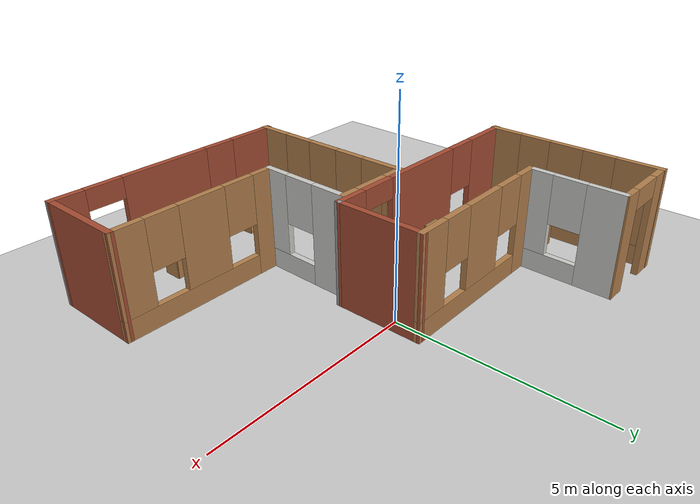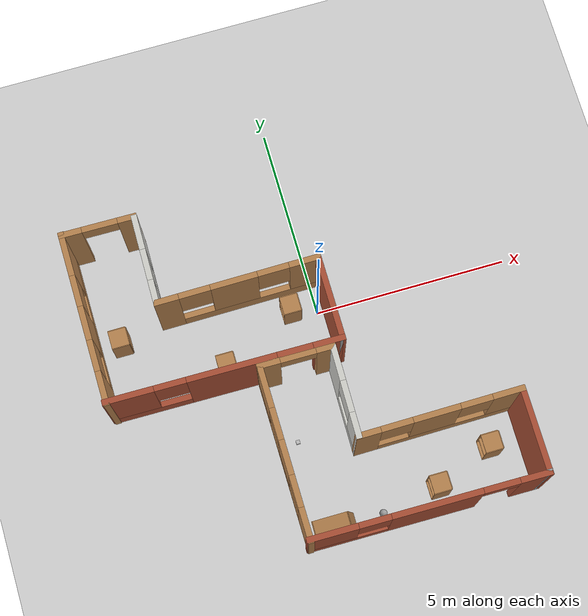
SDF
<sdf version="1.6">
 <world name="default">
  <plugin name="hello" filename="build/libhello.so"/>
  <plugin name="collision_map_creator" filename="libcollision_map_creator.so"/>
  <light name="sun" type="directional">
   <pose>0 0 10 0 -0 0</pose>
   <diffuse>0.8 0.8 0.8 1</diffuse>
   <specular>0.2 0.2 0.2 1</specular>
   <attenuation>
    <range>1000</range>
    <constant>0.9</constant>
    <linear>0.01</linear>
    <quadratic>0.001</quadratic>
   </attenuation>
   <direction>-0.5 0.1 -0.9</direction>
  </light>
  <model name="ground_plane">
   <static>1</static>
   <link name="link">
    <collision name="collision">
     <geometry><plane><normal>0 0 1</normal><size>100 100</size></plane></geometry>
     <surface>
      <contact><collide_bitmask>65535</collide_bitmask></contact>
      <friction><ode><mu>100</mu><mu2>50</mu2></ode></friction>
     </surface>
    </collision>
    <visual name="visual">
     <cast_shadows>0</cast_shadows>
     <geometry><plane><normal>0 0 1</normal><size>100 100</size></plane></geometry>
     <material>
      <script><uri>file://media/materials/scripts/gazebo.material</uri><name>Gazebo/Grey</name></script>
     </material>
    </visual>
   </link>
  </model>
  <gravity>0 0 -9.8</gravity>
  <magnetic_field>6e-06 2.3e-05 -4.2e-05</magnetic_field>
  <atmosphere type="adiabatic"/>
  <physics name="default_physics" default="0" type="ode">
   <max_step_size>0.001</max_step_size>
   <real_time_factor>1</real_time_factor>
   <real_time_update_rate>1000</real_time_update_rate>
  </physics>
  <scene><ambient>0.4 0.4 0.4 1</ambient><background>0.7 0.7 0.7 1</background><shadows>1</shadows></scene>
  <spherical_coordinates>
   <surface_model>EARTH_WGS84</surface_model>
   <latitude_deg>0</latitude_deg>
   <longitude_deg>0</longitude_deg>
   <elevation>0</elevation>
   <heading_deg>0</heading_deg>
  </spherical_coordinates>
  <model name="cabinet">
   <static>1</static>
   <link name="cabinet_bottom_plate">
    <inertial>
     <pose>0 0 -1 0 -0 0</pose>
     <inertia><ixx>2.05</ixx><ixy>0</ixy><ixz>0</ixz><iyy>2.05</iyy><iyz>0</iyz><izz>2.05</izz></inertia>
     <mass>25</mass>
    </inertial>
    <collision name="cabinet_bottom_plate_geom">
     <pose>0 0 0.01 0 -0 0</pose>
     <geometry><box><size>0.45 0.45 0.02</size></box></geometry>
    </collision>
    <visual name="cabinet_bottom_plate_geom_visual">
     <pose>0 0 0.01 0 -0 0</pose>
     <geometry><box><size>0.45 0.45 0.02</size></box></geometry>
     <material>
      <script><uri>file://media/materials/scripts/gazebo.material</uri><name>Gazebo/Wood</name></script>
     </material>
    </visual>
    <collision name="cabinet_bottom_plate_geom_cabinet_back_plate">
     <pose>0.235 0 0.51 0 -0 0</pose>
     <geometry><box><size>0.02 0.45 1.02</size></box></geometry>
    </collision>
    <visual name="cabinet_bottom_plate_geom_cabinet_back_plate_visual">
     <pose>0.235 0 0.51 0 -0 0</pose>
     <geometry><box><size>0.02 0.45 1.02</size></box></geometry>
     <material>
      <script><uri>file://media/materials/scripts/gazebo.material</uri><name>Gazebo/Wood</name></script>
     </material>
    </visual>
    <collision name="cabinet_bottom_plate_geom_cabinet_left_plate">
     <pose>0 0.235 0.51 0 -0 0</pose>
     <geometry><box><size>0.45 0.02 1.02</size></box></geometry>
    </collision>
    <visual name="cabinet_bottom_plate_geom_cabinet_left_plate_visual">
     <pose>0 0.235 0.51 0 -0 0</pose>
     <geometry><box><size>0.45 0.02 1.02</size></box></geometry>
     <material>
      <script><uri>file://media/materials/scripts/gazebo.material</uri><name>Gazebo/Wood</name></script>
     </material>
    </visual>
    <collision name="cabinet_bottom_plate_geom_cabinet_middle_plate">
     <pose>0 0 0.51 0 -0 0</pose>
     <geometry><box><size>0.45 0.45 0.02</size></box></geometry>
    </collision>
    <visual name="cabinet_bottom_plate_geom_cabinet_middle_plate_visual">
     <pose>0 0 0.51 0 -0 0</pose>
     <geometry><box><size>0.45 0.45 0.02</size></box></geometry>
     <material>
      <script><uri>file://media/materials/scripts/gazebo.material</uri><name>Gazebo/Wood</name></script>
     </material>
    </visual>
    <collision name="cabinet_bottom_plate_geom_cabinet_right_plate">
     <pose>0 -0.235 0.51 0 -0 0</pose>
     <geometry><box><size>0.45 0.02 1.02</size></box></geometry>
    </collision>
    <visual name="cabinet_bottom_plate_geom_cabinet_right_plate_visual">
     <pose>0 -0.235 0.51 0 -0 0</pose>
     <geometry><box><size>0.45 0.02 1.02</size></box></geometry>
     <material>
      <script><uri>file://media/materials/scripts/gazebo.material</uri><name>Gazebo/Wood</name></script>
     </material>
    </visual>
    <collision name="cabinet_bottom_plate_geom_cabinet_top_plate">
     <pose>0 0 1.01 0 -0 0</pose>
     <geometry><box><size>0.45 0.45 0.02</size></box></geometry>
    </collision>
    <visual name="cabinet_bottom_plate_geom_cabinet_top_plate_visual">
     <pose>0 0 1.01 0 -0 0</pose>
     <geometry><box><size>0.45 0.45 0.02</size></box></geometry>
     <material>
      <script><uri>file://media/materials/scripts/gazebo.material</uri><name>Gazebo/Wood</name></script>
     </material>
    </visual>
   </link>
   <pose>3.13613 -4.56747 0 0 -0 0</pose>
  </model>
  <model name="bookshelf">
   <static>1</static>
   <link name="link">
    <inertial><mass>1</mass></inertial>
    <collision name="back">
     <pose>0 0.005 0.6 0 -0 0</pose>
     <geometry><box><size>0.9 0.01 1.2</size></box></geometry>
    </collision>
    <visual name="visual1">
     <pose>0 0.005 0.6 0 -0 0</pose>
     <geometry><box><size>0.9 0.01 1.2</size></box></geometry>
     <material>
      <script><uri>file://media/materials/scripts/gazebo.material</uri><name>Gazebo/Wood</name></script>
     </material>
    </visual>
    <collision name="left_side">
     <pose>0.45 -0.195 0.6 0 -0 0</pose>
     <geometry><box><size>0.02 0.4 1.2</size></box></geometry>
    </collision>
    <visual name="visual2">
     <pose>0.45 -0.195 0.6 0 -0 0</pose>
     <geometry><box><size>0.02 0.4 1.2</size></box></geometry>
     <material>
      <script><uri>file://media/materials/scripts/gazebo.material</uri><name>Gazebo/Wood</name></script>
     </material>
    </visual>
    <collision name="right_side">
     <pose>-0.45 -0.195 0.6 0 -0 0</pose>
     <geometry><box><size>0.02 0.4 1.2</size></box></geometry>
    </collision>
    <visual name="visual3">
     <pose>-0.45 -0.195 0.6 0 -0 0</pose>
     <geometry><box><size>0.02 0.4 1.2</size></box></geometry>
     <material>
      <script><uri>file://media/materials/scripts/gazebo.material</uri><name>Gazebo/Wood</name></script>
     </material>
    </visual>
    <collision name="bottom">
     <pose>0 -0.195 0.03 0 -0 0</pose>
     <geometry><box><size>0.88 0.4 0.06</size></box></geometry>
    </collision>
    <visual name="visual4">
     <pose>0 -0.195 0.03 0 -0 0</pose>
     <geometry><box><size>0.88 0.4 0.06</size></box></geometry>
     <material>
      <script><uri>file://media/materials/scripts/gazebo.material</uri><name>Gazebo/Wood</name></script>
     </material>
    </visual>
    <collision name="top">
     <pose>0 -0.195 1.19 0 -0 0</pose>
     <geometry><box><size>0.88 0.4 0.02</size></box></geometry>
    </collision>
    <visual name="visual5">
     <pose>0 -0.195 1.19 0 -0 0</pose>
     <geometry><box><size>0.88 0.4 0.02</size></box></geometry>
     <material>
      <script><uri>file://media/materials/scripts/gazebo.material</uri><name>Gazebo/Wood</name></script>
     </material>
    </visual>
    <collision name="low_shelf">
     <pose>0 -0.195 0.43 0 -0 0</pose>
     <geometry><box><size>0.88 0.4 0.02</size></box></geometry>
    </collision>
    <visual name="visual6">
     <pose>0 -0.195 0.43 0 -0 0</pose>
     <geometry><box><size>0.88 0.4 0.02</size></box></geometry>
     <material>
      <script><uri>file://media/materials/scripts/gazebo.material</uri><name>Gazebo/Wood</name></script>
     </material>
    </visual>
    <collision name="high_shelf">
     <pose>0 -0.195 0.8 0 -0 0</pose>
     <geometry><box><size>0.88 0.4 0.02</size></box></geometry>
    </collision>
    <visual name="visual7">
     <pose>0 -0.195 0.8 0 -0 0</pose>
     <geometry><box><size>0.88 0.4 0.02</size></box></geometry>
     <material>
      <script><uri>file://media/materials/scripts/gazebo.material</uri><name>Gazebo/Wood</name></script>
     </material>
    </visual>
   </link>
   <pose>-1.04959 -5.57878 0.024897 -0.045384 0.163876 3.1208</pose>
  </model>
  <model name="camera">
   <pose>-1.41813 -3.09362 0.05 0 0 -0.001713</pose>
   <link name="link">
    <inertial>
     <mass>0.1</mass>
     <inertia>
      <ixx>0.000166667</ixx>
      <iyy>0.000166667</iyy>
      <izz>0.000166667</izz>
      <ixy>0</ixy>
      <ixz>0</ixz>
      <iyz>0</iyz>
     </inertia>
    </inertial>
    <collision name="collision"><geometry><box><size>0.1 0.1 0.1</size></box></geometry></collision>
    <visual name="visual"><geometry><box><size>0.1 0.1 0.1</size></box></geometry></visual>
    <sensor name="camera" type="camera">
     <camera name="__default__">
      <horizontal_fov>1.047</horizontal_fov>
      <image><width>320</width><height>240</height></image>
      <clip><near>0.1</near><far>100</far></clip>
     </camera>
     <always_on>1</always_on>
     <update_rate>30</update_rate>
     <visualize>1</visualize>
    </sensor>
   </link>
  </model>
  <model name="my_ball">
   <link name="link_0">
    <inertial>
     <mass>1</mass>
     <inertia><ixx>0.1</ixx><ixy>0</ixy><ixz>0</ixz><iyy>0.1</iyy><iyz>0</iyz><izz>0.1</izz></inertia>
    </inertial>
    <visual name="visual">
     <geometry><sphere><radius>0.1</radius></sphere></geometry>
     <material>
      <lighting>1</lighting>
      <script><uri>file://media/materials/scripts/gazebo.material</uri><name>Gazebo/Grey</name></script>
      <shader type="pixel"><normal_map>__default__</normal_map></shader>
      <ambient>1 1 1 1</ambient>
      <diffuse>1 1 1 1</diffuse>
      <specular>1 1 1 1</specular>
      <emissive>1 1 1 1</emissive>
     </material>
    </visual>
    <collision name="collision">
     <geometry><sphere><radius>0.1</radius></sphere></geometry>
     <surface>
      <friction>
       <ode><mu>1</mu><mu2>1</mu2><fdir1>0 0 0</fdir1><slip1>0</slip1><slip2>0</slip2></ode>
       <torsional>
        <coefficient>1</coefficient>
        <patch_radius>0</patch_radius>
        <surface_radius>0</surface_radius>
        <use_patch_radius>1</use_patch_radius>
        <ode><slip>0</slip></ode>
       </torsional>
      </friction>
      <bounce><restitution_coefficient>0</restitution_coefficient><threshold>1e+06</threshold></bounce>
      <contact>
       <collide_without_contact>0</collide_without_contact>
       <collide_without_contact_bitmask>1</collide_without_contact_bitmask>
       <collide_bitmask>1</collide_bitmask>
       <ode>
        <soft_cfm>0</soft_cfm>
        <soft_erp>0.2</soft_erp>
        <kp>1e+13</kp>
        <kd>1</kd>
        <max_vel>0.01</max_vel>
        <min_depth>0</min_depth>
       </ode>
       <bullet>
        <split_impulse>1</split_impulse>
        <split_impulse_penetration_threshold>-0.01</split_impulse_penetration_threshold>
        <soft_cfm>0</soft_cfm>
        <soft_erp>0.2</soft_erp>
        <kp>1e+13</kp>
        <kd>1</kd>
       </bullet>
      </contact>
     </surface>
    </collision>
   </link>
   <static>0</static>
   <pose>0.133025 -5.41319 0.1 0.012904 0.027519 0.009382</pose>
  </model>
  <model name="new_apartment">
   <pose>1.04651 -3.63154 0 0 -0 0</pose>
   <link name="Wall_0">
    <pose>-2.92676 0.020995 0 0 -0 1.5754</pose>
    <visual name="Wall_0_Visual_0">
     <pose>-1.80744 0 1.25 0 -0 0</pose>
     <geometry><box><size>0.875172 0.15 2.5</size></box></geometry>
     <material>
      <script><uri>file://media/materials/scripts/gazebo.material</uri><name>Gazebo/Wood</name></script>
      <ambient>1 1 1 1</ambient>
     </material>
     <meta><layer>0</layer></meta>
    </visual>
    <collision name="Wall_0_Collision_0">
     <geometry><box><size>0.875172 0.15 2.5</size></box></geometry>
     <pose>-1.80744 0 1.25 0 -0 0</pose>
    </collision>
    <visual name="Wall_0_Visual_1">
     <pose>0.437586 0 0.25 0 -0 0</pose>
     <geometry><box><size>3.61488 0.15 0.5</size></box></geometry>
     <material>
      <script><uri>file://media/materials/scripts/gazebo.material</uri><name>Gazebo/Wood</name></script>
      <ambient>1 1 1 1</ambient>
     </material>
     <meta><layer>0</layer></meta>
    </visual>
    <collision name="Wall_0_Collision_1">
     <geometry><box><size>3.61488 0.15 0.5</size></box></geometry>
     <pose>0.437586 0 0.25 0 -0 0</pose>
    </collision>
    <visual name="Wall_0_Visual_2">
     <pose>-0.134999 0 1.5 0 -0 0</pose>
     <geometry><box><size>0.869706 0.15 2</size></box></geometry>
     <material>
      <script><uri>file://media/materials/scripts/gazebo.material</uri><name>Gazebo/Wood</name></script>
      <ambient>1 1 1 1</ambient>
     </material>
     <meta><layer>0</layer></meta>
    </visual>
    <collision name="Wall_0_Collision_2">
     <geometry><box><size>0.869706 0.15 2</size></box></geometry>
     <pose>-0.134999 0 1.5 0 -0 0</pose>
    </collision>
    <visual name="Wall_0_Visual_3">
     <pose>1.67244 0 1.5 0 -0 0</pose>
     <geometry><box><size>1.14517 0.15 2</size></box></geometry>
     <material>
      <script><uri>file://media/materials/scripts/gazebo.material</uri><name>Gazebo/Wood</name></script>
      <ambient>1 1 1 1</ambient>
     </material>
     <meta><layer>0</layer></meta>
    </visual>
    <collision name="Wall_0_Collision_3">
     <geometry><box><size>1.14517 0.15 2</size></box></geometry>
     <pose>1.67244 0 1.5 0 -0 0</pose>
    </collision>
    <visual name="Wall_0_Visual_4">
     <pose>-0.969852 0 1.9 0 -0 0</pose>
     <geometry><box><size>0.8 0.15 1.2</size></box></geometry>
     <material>
      <script><uri>file://media/materials/scripts/gazebo.material</uri><name>Gazebo/Wood</name></script>
      <ambient>1 1 1 1</ambient>
     </material>
     <meta><layer>0</layer></meta>
    </visual>
    <collision name="Wall_0_Collision_4">
     <geometry><box><size>0.8 0.15 1.2</size></box></geometry>
     <pose>-0.969852 0 1.9 0 -0 0</pose>
    </collision>
    <visual name="Wall_0_Visual_5">
     <pose>0.699854 0 1.9 0 -0 0</pose>
     <geometry><box><size>0.8 0.15 1.2</size></box></geometry>
     <material>
      <script><uri>file://media/materials/scripts/gazebo.material</uri><name>Gazebo/Wood</name></script>
      <ambient>1 1 1 1</ambient>
     </material>
     <meta><layer>0</layer></meta>
    </visual>
    <collision name="Wall_0_Collision_5">
     <geometry><box><size>0.8 0.15 1.2</size></box></geometry>
     <pose>0.699854 0 1.9 0 -0 0</pose>
    </collision>
   </link>
   <link name="Wall_1">
    <pose>-2.02176 2.171 0 0 0 -0.010929</pose>
    <visual name="Wall_1_Visual_0">
     <pose>-0.697365 0 1.25 0 -0 0</pose>
     <geometry><box><size>0.58538 0.15 2.5</size></box></geometry>
     <material>
      <script><uri>file://media/materials/scripts/gazebo.material</uri><name>Gazebo/Wood</name></script>
      <ambient>1 1 1 1</ambient>
     </material>
     <meta><layer>0</layer></meta>
    </visual>
    <collision name="Wall_1_Collision_0">
     <geometry><box><size>0.58538 0.15 2.5</size></box></geometry>
     <pose>-0.697365 0 1.25 0 -0 0</pose>
    </collision>
    <visual name="Wall_1_Visual_1">
     <pose>0.74269 0 1.25 0 -0 0</pose>
     <geometry><box><size>0.49473 0.15 2.5</size></box></geometry>
     <material>
      <script><uri>file://media/materials/scripts/gazebo.material</uri><name>Gazebo/Wood</name></script>
      <ambient>1 1 1 1</ambient>
     </material>
     <meta><layer>0</layer></meta>
    </visual>
    <collision name="Wall_1_Collision_1">
     <geometry><box><size>0.49473 0.15 2.5</size></box></geometry>
     <pose>0.74269 0 1.25 0 -0 0</pose>
    </collision>
    <visual name="Wall_1_Visual_2">
     <pose>0.045325 0 2.25 0 -0 0</pose>
     <geometry><box><size>0.9 0.15 0.5</size></box></geometry>
     <material>
      <script><uri>file://media/materials/scripts/gazebo.material</uri><name>Gazebo/Wood</name></script>
      <ambient>1 1 1 1</ambient>
     </material>
     <meta><layer>0</layer></meta>
    </visual>
    <collision name="Wall_1_Collision_2">
     <geometry><box><size>0.9 0.15 0.5</size></box></geometry>
     <pose>0.045325 0 2.25 0 -0 0</pose>
    </collision>
   </link>
   <link name="Wall_2">
    <pose>-1.12176 1.011 0 0 0 -1.58431</pose>
    <visual name="Wall_2_Visual_0">
     <pose>-0.732185 0 1.25 0 -0 0</pose>
     <geometry><box><size>0.905834 0.15 2.5</size></box></geometry>
     <material>
      <script><uri>file://media/materials/scripts/gazebo.material</uri><name>Gazebo/CeilingTiled</name></script>
      <ambient>0.435294 0.796078 0.67451 1</ambient>
     </material>
     <meta><layer>0</layer></meta>
    </visual>
    <collision name="Wall_2_Collision_0">
     <geometry><box><size>0.905834 0.15 2.5</size></box></geometry>
     <pose>-0.732185 0 1.25 0 -0 0</pose>
    </collision>
    <visual name="Wall_2_Visual_1">
     <pose>0.452917 0 0.25 0 -0 0</pose>
     <geometry><box><size>1.46437 0.15 0.5</size></box></geometry>
     <material>
      <script><uri>file://media/materials/scripts/gazebo.material</uri><name>Gazebo/CeilingTiled</name></script>
      <ambient>0.435294 0.796078 0.67451 1</ambient>
     </material>
     <meta><layer>0</layer></meta>
    </visual>
    <collision name="Wall_2_Collision_1">
     <geometry><box><size>1.46437 0.15 0.5</size></box></geometry>
     <pose>0.452917 0 0.25 0 -0 0</pose>
    </collision>
    <visual name="Wall_2_Visual_2">
     <pose>0.852917 0 1.5 0 -0 0</pose>
     <geometry><box><size>0.664369 0.15 2</size></box></geometry>
     <material>
      <script><uri>file://media/materials/scripts/gazebo.material</uri><name>Gazebo/CeilingTiled</name></script>
      <ambient>0.435294 0.796078 0.67451 1</ambient>
     </material>
     <meta><layer>0</layer></meta>
    </visual>
    <collision name="Wall_2_Collision_2">
     <geometry><box><size>0.664369 0.15 2</size></box></geometry>
     <pose>0.852917 0 1.5 0 -0 0</pose>
    </collision>
    <visual name="Wall_2_Visual_3">
     <pose>0.120732 0 1.9 0 -0 0</pose>
     <geometry><box><size>0.8 0.15 1.2</size></box></geometry>
     <material>
      <script><uri>file://media/materials/scripts/gazebo.material</uri><name>Gazebo/CeilingTiled</name></script>
      <ambient>0.435294 0.796078 0.67451 1</ambient>
     </material>
     <meta><layer>0</layer></meta>
    </visual>
    <collision name="Wall_2_Collision_3">
     <geometry><box><size>0.8 0.15 1.2</size></box></geometry>
     <pose>0.120732 0 1.9 0 -0 0</pose>
    </collision>
   </link>
   <link name="Wall_3">
    <pose>0.905 -0.099783 0 0 -0 0.004517</pose>
    <visual name="Wall_3_Visual_0">
     <pose>-1.80429 0 1.25 0 -0 0</pose>
     <geometry><box><size>0.62499 0.15 2.5</size></box></geometry>
     <material>
      <script><uri>file://media/materials/scripts/gazebo.material</uri><name>Gazebo/Wood</name></script>
      <ambient>1 1 1 1</ambient>
     </material>
     <meta><layer>0</layer></meta>
    </visual>
    <collision name="Wall_3_Collision_0">
     <geometry><box><size>0.62499 0.15 2.5</size></box></geometry>
     <pose>-1.80429 0 1.25 0 -0 0</pose>
    </collision>
    <visual name="Wall_3_Visual_1">
     <pose>0.312495 0 0.25 0 -0 0</pose>
     <geometry><box><size>3.60857 0.15 0.5</size></box></geometry>
     <material>
      <script><uri>file://media/materials/scripts/gazebo.material</uri><name>Gazebo/Wood</name></script>
      <ambient>1 1 1 1</ambient>
     </material>
     <meta><layer>0</layer></meta>
    </visual>
    <collision name="Wall_3_Collision_1">
     <geometry><box><size>3.60857 0.15 0.5</size></box></geometry>
     <pose>0.312495 0 0.25 0 -0 0</pose>
    </collision>
    <visual name="Wall_3_Visual_2">
     <pose>-0.096552 0 1.5 0 -0 0</pose>
     <geometry><box><size>1.19048 0.15 2</size></box></geometry>
     <material>
      <script><uri>file://media/materials/scripts/gazebo.material</uri><name>Gazebo/Wood</name></script>
      <ambient>1 1 1 1</ambient>
     </material>
     <meta><layer>0</layer></meta>
    </visual>
    <collision name="Wall_3_Collision_2">
     <geometry><box><size>1.19048 0.15 2</size></box></geometry>
     <pose>-0.096552 0 1.5 0 -0 0</pose>
    </collision>
    <visual name="Wall_3_Visual_3">
     <pose>1.70773 0 1.5 0 -0 0</pose>
     <geometry><box><size>0.818095 0.15 2</size></box></geometry>
     <material>
      <script><uri>file://media/materials/scripts/gazebo.material</uri><name>Gazebo/Wood</name></script>
      <ambient>1 1 1 1</ambient>
     </material>
     <meta><layer>0</layer></meta>
    </visual>
    <collision name="Wall_3_Collision_3">
     <geometry><box><size>0.818095 0.15 2</size></box></geometry>
     <pose>1.70773 0 1.5 0 -0 0</pose>
    </collision>
    <visual name="Wall_3_Visual_4">
     <pose>-1.09179 0 1.9 0 -0 0</pose>
     <geometry><box><size>0.8 0.15 1.2</size></box></geometry>
     <material>
      <script><uri>file://media/materials/scripts/gazebo.material</uri><name>Gazebo/Wood</name></script>
      <ambient>1 1 1 1</ambient>
     </material>
     <meta><layer>0</layer></meta>
    </visual>
    <collision name="Wall_3_Collision_4">
     <geometry><box><size>0.8 0.15 1.2</size></box></geometry>
     <pose>-1.09179 0 1.9 0 -0 0</pose>
    </collision>
    <visual name="Wall_3_Visual_5">
     <pose>0.898686 0 1.9 0 -0 0</pose>
     <geometry><box><size>0.8 0.15 1.2</size></box></geometry>
     <material>
      <script><uri>file://media/materials/scripts/gazebo.material</uri><name>Gazebo/Wood</name></script>
      <ambient>1 1 1 1</ambient>
     </material>
     <meta><layer>0</layer></meta>
    </visual>
    <collision name="Wall_3_Collision_5">
     <geometry><box><size>0.8 0.15 1.2</size></box></geometry>
     <pose>0.898686 0 1.9 0 -0 0</pose>
    </collision>
   </link>
   <link name="Wall_4">
    <collision name="Wall_4_Collision">
     <geometry><box><size>2.25 0.15 2.5</size></box></geometry>
     <pose>0 0 1.25 0 -0 0</pose>
    </collision>
    <visual name="Wall_4_Visual">
     <pose>0 0 1.25 0 -0 0</pose>
     <geometry><box><size>2.25 0.15 2.5</size></box></geometry>
     <material>
      <script><uri>file://media/materials/scripts/gazebo.material</uri><name>Gazebo/Bricks</name></script>
      <ambient>1 1 1 1</ambient>
     </material>
     <meta><layer>0</layer></meta>
    </visual>
    <pose>2.94676 -1.14056 0 0 0 -1.5708</pose>
   </link>
   <link name="Wall_5">
    <collision name="Wall_5_Collision">
     <geometry><box><size>0.15 0.15 2.5</size></box></geometry>
     <pose>0 0 1.25 0 -0 0</pose>
    </collision>
    <visual name="Wall_5_Visual">
     <pose>0 0 1.25 0 -0 0</pose>
     <geometry><box><size>0.15 0.15 2.5</size></box></geometry>
     <material>
      <script><uri>file://media/materials/scripts/gazebo.material</uri><name>Gazebo/Grey</name></script>
      <ambient>1 1 1 1</ambient>
     </material>
     <meta><layer>0</layer></meta>
    </visual>
    <pose>2.94676 -2.19056 0 0 -0 0</pose>
   </link>
   <link name="Wall_6">
    <collision name="Wall_6_Collision">
     <geometry><box><size>0.15 0.15 2.5</size></box></geometry>
     <pose>0 0 1.25 0 -0 0</pose>
    </collision>
    <visual name="Wall_6_Visual">
     <pose>0 0 1.25 0 -0 0</pose>
     <geometry><box><size>0.15 0.15 2.5</size></box></geometry>
     <material>
      <script><uri>file://media/materials/scripts/gazebo.material</uri><name>Gazebo/Grey</name></script>
      <ambient>1 1 1 1</ambient>
     </material>
     <meta><layer>0</layer></meta>
    </visual>
    <pose>2.94676 -2.19056 0 0 -0 0</pose>
   </link>
   <link name="Wall_7">
    <pose>0 -2.15978 0 0 -0 3.13115</pose>
    <visual name="Wall_7_Visual_0">
     <pose>-2.61727 0 1.25 0 -0 0</pose>
     <geometry><box><size>0.809307 0.15 2.5</size></box></geometry>
     <material>
      <script><uri>file://media/materials/scripts/gazebo.material</uri><name>Gazebo/Bricks</name></script>
      <ambient>0.435294 0.796078 0.67451 1</ambient>
     </material>
     <meta><layer>0</layer></meta>
    </visual>
    <collision name="Wall_7_Collision_0">
     <geometry><box><size>0.809307 0.15 2.5</size></box></geometry>
     <pose>-2.61727 0 1.25 0 -0 0</pose>
    </collision>
    <visual name="Wall_7_Visual_1">
     <pose>-0.183273 0 1.25 0 -0 0</pose>
     <geometry><box><size>2.25868 0.15 2.5</size></box></geometry>
     <material>
      <script><uri>file://media/materials/scripts/gazebo.material</uri><name>Gazebo/Bricks</name></script>
      <ambient>0.435294 0.796078 0.67451 1</ambient>
     </material>
     <meta><layer>0</layer></meta>
    </visual>
    <collision name="Wall_7_Collision_1">
     <geometry><box><size>2.25868 0.15 2.5</size></box></geometry>
     <pose>-0.183273 0 1.25 0 -0 0</pose>
    </collision>
    <visual name="Wall_7_Visual_2">
     <pose>1.98399 0 0.25 0 -0 0</pose>
     <geometry><box><size>2.07585 0.15 0.5</size></box></geometry>
     <material>
      <script><uri>file://media/materials/scripts/gazebo.material</uri><name>Gazebo/Bricks</name></script>
      <ambient>0.435294 0.796078 0.67451 1</ambient>
     </material>
     <meta><layer>0</layer></meta>
    </visual>
    <collision name="Wall_7_Collision_2">
     <geometry><box><size>2.07585 0.15 0.5</size></box></geometry>
     <pose>1.98399 0 0.25 0 -0 0</pose>
    </collision>
    <visual name="Wall_7_Visual_3">
     <pose>2.38399 0 1.5 0 -0 0</pose>
     <geometry><box><size>1.27585 0.15 2</size></box></geometry>
     <material>
      <script><uri>file://media/materials/scripts/gazebo.material</uri><name>Gazebo/Bricks</name></script>
      <ambient>0.435294 0.796078 0.67451 1</ambient>
     </material>
     <meta><layer>0</layer></meta>
    </visual>
    <collision name="Wall_7_Collision_3">
     <geometry><box><size>1.27585 0.15 2</size></box></geometry>
     <pose>2.38399 0 1.5 0 -0 0</pose>
    </collision>
    <visual name="Wall_7_Visual_4">
     <pose>1.34607 0 1.9 0 -0 0</pose>
     <geometry><box><size>0.8 0.15 1.2</size></box></geometry>
     <material>
      <script><uri>file://media/materials/scripts/gazebo.material</uri><name>Gazebo/Bricks</name></script>
      <ambient>0.435294 0.796078 0.67451 1</ambient>
     </material>
     <meta><layer>0</layer></meta>
    </visual>
    <collision name="Wall_7_Collision_4">
     <geometry><box><size>0.8 0.15 1.2</size></box></geometry>
     <pose>1.34607 0 1.9 0 -0 0</pose>
    </collision>
    <visual name="Wall_7_Visual_5">
     <pose>-1.76261 0 2.25 0 -0 0</pose>
     <geometry><box><size>0.9 0.15 0.5</size></box></geometry>
     <material>
      <script><uri>file://media/materials/scripts/gazebo.material</uri><name>Gazebo/Bricks</name></script>
      <ambient>0.435294 0.796078 0.67451 1</ambient>
     </material>
     <meta><layer>0</layer></meta>
    </visual>
    <collision name="Wall_7_Collision_5">
     <geometry><box><size>0.9 0.15 0.5</size></box></geometry>
     <pose>-1.76261 0 2.25 0 -0 0</pose>
    </collision>
   </link>
   <static>1</static>
  </model>
  <model name="new_apartment_0">
   <pose>-2.72331 0.858317 0 0 -0 0</pose>
   <link name="Wall_0">
    <pose>-2.92676 0.020995 0 0 -0 1.5754</pose>
    <visual name="Wall_0_Visual_0">
     <pose>-1.80744 0 1.25 0 -0 0</pose>
     <geometry><box><size>0.875172 0.15 2.5</size></box></geometry>
     <material>
      <script><uri>file://media/materials/scripts/gazebo.material</uri><name>Gazebo/Wood</name></script>
      <ambient>1 1 1 1</ambient>
     </material>
     <meta><layer>0</layer></meta>
    </visual>
    <collision name="Wall_0_Collision_0">
     <geometry><box><size>0.875172 0.15 2.5</size></box></geometry>
     <pose>-1.80744 0 1.25 0 -0 0</pose>
    </collision>
    <visual name="Wall_0_Visual_1">
     <pose>0.437586 0 0.25 0 -0 0</pose>
     <geometry><box><size>3.61488 0.15 0.5</size></box></geometry>
     <material>
      <script><uri>file://media/materials/scripts/gazebo.material</uri><name>Gazebo/Wood</name></script>
      <ambient>1 1 1 1</ambient>
     </material>
     <meta><layer>0</layer></meta>
    </visual>
    <collision name="Wall_0_Collision_1">
     <geometry><box><size>3.61488 0.15 0.5</size></box></geometry>
     <pose>0.437586 0 0.25 0 -0 0</pose>
    </collision>
    <visual name="Wall_0_Visual_2">
     <pose>-0.134999 0 1.5 0 -0 0</pose>
     <geometry><box><size>0.869706 0.15 2</size></box></geometry>
     <material>
      <script><uri>file://media/materials/scripts/gazebo.material</uri><name>Gazebo/Wood</name></script>
      <ambient>1 1 1 1</ambient>
     </material>
     <meta><layer>0</layer></meta>
    </visual>
    <collision name="Wall_0_Collision_2">
     <geometry><box><size>0.869706 0.15 2</size></box></geometry>
     <pose>-0.134999 0 1.5 0 -0 0</pose>
    </collision>
    <visual name="Wall_0_Visual_3">
     <pose>1.67244 0 1.5 0 -0 0</pose>
     <geometry><box><size>1.14517 0.15 2</size></box></geometry>
     <material>
      <script><uri>file://media/materials/scripts/gazebo.material</uri><name>Gazebo/Wood</name></script>
      <ambient>1 1 1 1</ambient>
     </material>
     <meta><layer>0</layer></meta>
    </visual>
    <collision name="Wall_0_Collision_3">
     <geometry><box><size>1.14517 0.15 2</size></box></geometry>
     <pose>1.67244 0 1.5 0 -0 0</pose>
    </collision>
    <visual name="Wall_0_Visual_4">
     <pose>-0.969852 0 1.9 0 -0 0</pose>
     <geometry><box><size>0.8 0.15 1.2</size></box></geometry>
     <material>
      <script><uri>file://media/materials/scripts/gazebo.material</uri><name>Gazebo/Wood</name></script>
      <ambient>1 1 1 1</ambient>
     </material>
     <meta><layer>0</layer></meta>
    </visual>
    <collision name="Wall_0_Collision_4">
     <geometry><box><size>0.8 0.15 1.2</size></box></geometry>
     <pose>-0.969852 0 1.9 0 -0 0</pose>
    </collision>
    <visual name="Wall_0_Visual_5">
     <pose>0.699854 0 1.9 0 -0 0</pose>
     <geometry><box><size>0.8 0.15 1.2</size></box></geometry>
     <material>
      <script><uri>file://media/materials/scripts/gazebo.material</uri><name>Gazebo/Wood</name></script>
      <ambient>1 1 1 1</ambient>
     </material>
     <meta><layer>0</layer></meta>
    </visual>
    <collision name="Wall_0_Collision_5">
     <geometry><box><size>0.8 0.15 1.2</size></box></geometry>
     <pose>0.699854 0 1.9 0 -0 0</pose>
    </collision>
   </link>
   <link name="Wall_1">
    <pose>-2.02176 2.171 0 0 0 -0.010929</pose>
    <visual name="Wall_1_Visual_0">
     <pose>-0.697365 0 1.25 0 -0 0</pose>
     <geometry><box><size>0.58538 0.15 2.5</size></box></geometry>
     <material>
      <script><uri>file://media/materials/scripts/gazebo.material</uri><name>Gazebo/Wood</name></script>
      <ambient>1 1 1 1</ambient>
     </material>
     <meta><layer>0</layer></meta>
    </visual>
    <collision name="Wall_1_Collision_0">
     <geometry><box><size>0.58538 0.15 2.5</size></box></geometry>
     <pose>-0.697365 0 1.25 0 -0 0</pose>
    </collision>
    <visual name="Wall_1_Visual_1">
     <pose>0.74269 0 1.25 0 -0 0</pose>
     <geometry><box><size>0.49473 0.15 2.5</size></box></geometry>
     <material>
      <script><uri>file://media/materials/scripts/gazebo.material</uri><name>Gazebo/Wood</name></script>
      <ambient>1 1 1 1</ambient>
     </material>
     <meta><layer>0</layer></meta>
    </visual>
    <collision name="Wall_1_Collision_1">
     <geometry><box><size>0.49473 0.15 2.5</size></box></geometry>
     <pose>0.74269 0 1.25 0 -0 0</pose>
    </collision>
    <visual name="Wall_1_Visual_2">
     <pose>0.045325 0 2.25 0 -0 0</pose>
     <geometry><box><size>0.9 0.15 0.5</size></box></geometry>
     <material>
      <script><uri>file://media/materials/scripts/gazebo.material</uri><name>Gazebo/Wood</name></script>
      <ambient>1 1 1 1</ambient>
     </material>
     <meta><layer>0</layer></meta>
    </visual>
    <collision name="Wall_1_Collision_2">
     <geometry><box><size>0.9 0.15 0.5</size></box></geometry>
     <pose>0.045325 0 2.25 0 -0 0</pose>
    </collision>
   </link>
   <link name="Wall_2">
    <pose>-1.12176 1.011 0 0 0 -1.58431</pose>
    <visual name="Wall_2_Visual_0">
     <pose>-0.732185 0 1.25 0 -0 0</pose>
     <geometry><box><size>0.905834 0.15 2.5</size></box></geometry>
     <material>
      <script><uri>file://media/materials/scripts/gazebo.material</uri><name>Gazebo/CeilingTiled</name></script>
      <ambient>0.435294 0.796078 0.67451 1</ambient>
     </material>
     <meta><layer>0</layer></meta>
    </visual>
    <collision name="Wall_2_Collision_0">
     <geometry><box><size>0.905834 0.15 2.5</size></box></geometry>
     <pose>-0.732185 0 1.25 0 -0 0</pose>
    </collision>
    <visual name="Wall_2_Visual_1">
     <pose>0.452917 0 0.25 0 -0 0</pose>
     <geometry><box><size>1.46437 0.15 0.5</size></box></geometry>
     <material>
      <script><uri>file://media/materials/scripts/gazebo.material</uri><name>Gazebo/CeilingTiled</name></script>
      <ambient>0.435294 0.796078 0.67451 1</ambient>
     </material>
     <meta><layer>0</layer></meta>
    </visual>
    <collision name="Wall_2_Collision_1">
     <geometry><box><size>1.46437 0.15 0.5</size></box></geometry>
     <pose>0.452917 0 0.25 0 -0 0</pose>
    </collision>
    <visual name="Wall_2_Visual_2">
     <pose>0.852917 0 1.5 0 -0 0</pose>
     <geometry><box><size>0.664369 0.15 2</size></box></geometry>
     <material>
      <script><uri>file://media/materials/scripts/gazebo.material</uri><name>Gazebo/CeilingTiled</name></script>
      <ambient>0.435294 0.796078 0.67451 1</ambient>
     </material>
     <meta><layer>0</layer></meta>
    </visual>
    <collision name="Wall_2_Collision_2">
     <geometry><box><size>0.664369 0.15 2</size></box></geometry>
     <pose>0.852917 0 1.5 0 -0 0</pose>
    </collision>
    <visual name="Wall_2_Visual_3">
     <pose>0.120732 0 1.9 0 -0 0</pose>
     <geometry><box><size>0.8 0.15 1.2</size></box></geometry>
     <material>
      <script><uri>file://media/materials/scripts/gazebo.material</uri><name>Gazebo/CeilingTiled</name></script>
      <ambient>0.435294 0.796078 0.67451 1</ambient>
     </material>
     <meta><layer>0</layer></meta>
    </visual>
    <collision name="Wall_2_Collision_3">
     <geometry><box><size>0.8 0.15 1.2</size></box></geometry>
     <pose>0.120732 0 1.9 0 -0 0</pose>
    </collision>
   </link>
   <link name="Wall_3">
    <pose>0.905 -0.099783 0 0 -0 0.004517</pose>
    <visual name="Wall_3_Visual_0">
     <pose>-1.80429 0 1.25 0 -0 0</pose>
     <geometry><box><size>0.62499 0.15 2.5</size></box></geometry>
     <material>
      <script><uri>file://media/materials/scripts/gazebo.material</uri><name>Gazebo/Wood</name></script>
      <ambient>1 1 1 1</ambient>
     </material>
     <meta><layer>0</layer></meta>
    </visual>
    <collision name="Wall_3_Collision_0">
     <geometry><box><size>0.62499 0.15 2.5</size></box></geometry>
     <pose>-1.80429 0 1.25 0 -0 0</pose>
    </collision>
    <visual name="Wall_3_Visual_1">
     <pose>0.312495 0 0.25 0 -0 0</pose>
     <geometry><box><size>3.60857 0.15 0.5</size></box></geometry>
     <material>
      <script><uri>file://media/materials/scripts/gazebo.material</uri><name>Gazebo/Wood</name></script>
      <ambient>1 1 1 1</ambient>
     </material>
     <meta><layer>0</layer></meta>
    </visual>
    <collision name="Wall_3_Collision_1">
     <geometry><box><size>3.60857 0.15 0.5</size></box></geometry>
     <pose>0.312495 0 0.25 0 -0 0</pose>
    </collision>
    <visual name="Wall_3_Visual_2">
     <pose>-0.096552 0 1.5 0 -0 0</pose>
     <geometry><box><size>1.19048 0.15 2</size></box></geometry>
     <material>
      <script><uri>file://media/materials/scripts/gazebo.material</uri><name>Gazebo/Wood</name></script>
      <ambient>1 1 1 1</ambient>
     </material>
     <meta><layer>0</layer></meta>
    </visual>
    <collision name="Wall_3_Collision_2">
     <geometry><box><size>1.19048 0.15 2</size></box></geometry>
     <pose>-0.096552 0 1.5 0 -0 0</pose>
    </collision>
    <visual name="Wall_3_Visual_3">
     <pose>1.70773 0 1.5 0 -0 0</pose>
     <geometry><box><size>0.818095 0.15 2</size></box></geometry>
     <material>
      <script><uri>file://media/materials/scripts/gazebo.material</uri><name>Gazebo/Wood</name></script>
      <ambient>1 1 1 1</ambient>
     </material>
     <meta><layer>0</layer></meta>
    </visual>
    <collision name="Wall_3_Collision_3">
     <geometry><box><size>0.818095 0.15 2</size></box></geometry>
     <pose>1.70773 0 1.5 0 -0 0</pose>
    </collision>
    <visual name="Wall_3_Visual_4">
     <pose>-1.09179 0 1.9 0 -0 0</pose>
     <geometry><box><size>0.8 0.15 1.2</size></box></geometry>
     <material>
      <script><uri>file://media/materials/scripts/gazebo.material</uri><name>Gazebo/Wood</name></script>
      <ambient>1 1 1 1</ambient>
     </material>
     <meta><layer>0</layer></meta>
    </visual>
    <collision name="Wall_3_Collision_4">
     <geometry><box><size>0.8 0.15 1.2</size></box></geometry>
     <pose>-1.09179 0 1.9 0 -0 0</pose>
    </collision>
    <visual name="Wall_3_Visual_5">
     <pose>0.898686 0 1.9 0 -0 0</pose>
     <geometry><box><size>0.8 0.15 1.2</size></box></geometry>
     <material>
      <script><uri>file://media/materials/scripts/gazebo.material</uri><name>Gazebo/Wood</name></script>
      <ambient>1 1 1 1</ambient>
     </material>
     <meta><layer>0</layer></meta>
    </visual>
    <collision name="Wall_3_Collision_5">
     <geometry><box><size>0.8 0.15 1.2</size></box></geometry>
     <pose>0.898686 0 1.9 0 -0 0</pose>
    </collision>
   </link>
   <link name="Wall_4">
    <collision name="Wall_4_Collision">
     <geometry><box><size>2.25 0.15 2.5</size></box></geometry>
     <pose>0 0 1.25 0 -0 0</pose>
    </collision>
    <visual name="Wall_4_Visual">
     <pose>0 0 1.25 0 -0 0</pose>
     <geometry><box><size>2.25 0.15 2.5</size></box></geometry>
     <material>
      <script><uri>file://media/materials/scripts/gazebo.material</uri><name>Gazebo/Bricks</name></script>
      <ambient>1 1 1 1</ambient>
     </material>
     <meta><layer>0</layer></meta>
    </visual>
    <pose>2.94676 -1.14056 0 0 0 -1.5708</pose>
   </link>
   <link name="Wall_5">
    <collision name="Wall_5_Collision">
     <geometry><box><size>0.15 0.15 2.5</size></box></geometry>
     <pose>0 0 1.25 0 -0 0</pose>
    </collision>
    <visual name="Wall_5_Visual">
     <pose>0 0 1.25 0 -0 0</pose>
     <geometry><box><size>0.15 0.15 2.5</size></box></geometry>
     <material>
      <script><uri>file://media/materials/scripts/gazebo.material</uri><name>Gazebo/Grey</name></script>
      <ambient>1 1 1 1</ambient>
     </material>
     <meta><layer>0</layer></meta>
    </visual>
    <pose>2.94676 -2.19056 0 0 -0 0</pose>
   </link>
   <link name="Wall_6">
    <collision name="Wall_6_Collision">
     <geometry><box><size>0.15 0.15 2.5</size></box></geometry>
     <pose>0 0 1.25 0 -0 0</pose>
    </collision>
    <visual name="Wall_6_Visual">
     <pose>0 0 1.25 0 -0 0</pose>
     <geometry><box><size>0.15 0.15 2.5</size></box></geometry>
     <material>
      <script><uri>file://media/materials/scripts/gazebo.material</uri><name>Gazebo/Grey</name></script>
      <ambient>1 1 1 1</ambient>
     </material>
     <meta><layer>0</layer></meta>
    </visual>
    <pose>2.94676 -2.19056 0 0 -0 0</pose>
   </link>
   <link name="Wall_7">
    <pose>0 -2.15978 0 0 -0 3.13115</pose>
    <visual name="Wall_7_Visual_0">
     <pose>-2.61727 0 1.25 0 -0 0</pose>
     <geometry><box><size>0.809307 0.15 2.5</size></box></geometry>
     <material>
      <script><uri>file://media/materials/scripts/gazebo.material</uri><name>Gazebo/Bricks</name></script>
      <ambient>0.435294 0.796078 0.67451 1</ambient>
     </material>
     <meta><layer>0</layer></meta>
    </visual>
    <collision name="Wall_7_Collision_0">
     <geometry><box><size>0.809307 0.15 2.5</size></box></geometry>
     <pose>-2.61727 0 1.25 0 -0 0</pose>
    </collision>
    <visual name="Wall_7_Visual_1">
     <pose>-0.183273 0 1.25 0 -0 0</pose>
     <geometry><box><size>2.25868 0.15 2.5</size></box></geometry>
     <material>
      <script><uri>file://media/materials/scripts/gazebo.material</uri><name>Gazebo/Bricks</name></script>
      <ambient>0.435294 0.796078 0.67451 1</ambient>
     </material>
     <meta><layer>0</layer></meta>
    </visual>
    <collision name="Wall_7_Collision_1">
     <geometry><box><size>2.25868 0.15 2.5</size></box></geometry>
     <pose>-0.183273 0 1.25 0 -0 0</pose>
    </collision>
    <visual name="Wall_7_Visual_2">
     <pose>1.98399 0 0.25 0 -0 0</pose>
     <geometry><box><size>2.07585 0.15 0.5</size></box></geometry>
     <material>
      <script><uri>file://media/materials/scripts/gazebo.material</uri><name>Gazebo/Bricks</name></script>
      <ambient>0.435294 0.796078 0.67451 1</ambient>
     </material>
     <meta><layer>0</layer></meta>
    </visual>
    <collision name="Wall_7_Collision_2">
     <geometry><box><size>2.07585 0.15 0.5</size></box></geometry>
     <pose>1.98399 0 0.25 0 -0 0</pose>
    </collision>
    <visual name="Wall_7_Visual_3">
     <pose>2.38399 0 1.5 0 -0 0</pose>
     <geometry><box><size>1.27585 0.15 2</size></box></geometry>
     <material>
      <script><uri>file://media/materials/scripts/gazebo.material</uri><name>Gazebo/Bricks</name></script>
      <ambient>0.435294 0.796078 0.67451 1</ambient>
     </material>
     <meta><layer>0</layer></meta>
    </visual>
    <collision name="Wall_7_Collision_3">
     <geometry><box><size>1.27585 0.15 2</size></box></geometry>
     <pose>2.38399 0 1.5 0 -0 0</pose>
    </collision>
    <visual name="Wall_7_Visual_4">
     <pose>1.34607 0 1.9 0 -0 0</pose>
     <geometry><box><size>0.8 0.15 1.2</size></box></geometry>
     <material>
      <script><uri>file://media/materials/scripts/gazebo.material</uri><name>Gazebo/Bricks</name></script>
      <ambient>0.435294 0.796078 0.67451 1</ambient>
     </material>
     <meta><layer>0</layer></meta>
    </visual>
    <collision name="Wall_7_Collision_4">
     <geometry><box><size>0.8 0.15 1.2</size></box></geometry>
     <pose>1.34607 0 1.9 0 -0 0</pose>
    </collision>
    <visual name="Wall_7_Visual_5">
     <pose>-1.76261 0 2.25 0 -0 0</pose>
     <geometry><box><size>0.9 0.15 0.5</size></box></geometry>
     <material>
      <script><uri>file://media/materials/scripts/gazebo.material</uri><name>Gazebo/Bricks</name></script>
      <ambient>0.435294 0.796078 0.67451 1</ambient>
     </material>
     <meta><layer>0</layer></meta>
    </visual>
    <collision name="Wall_7_Collision_5">
     <geometry><box><size>0.9 0.15 0.5</size></box></geometry>
     <pose>-1.76261 0 2.25 0 -0 0</pose>
    </collision>
   </link>
   <static>1</static>
  </model>
  <model name="cabinet_clone">
   <static>1</static>
   <link name="cabinet_bottom_plate">
    <inertial>
     <pose>0 0 -1 0 -0 0</pose>
     <inertia><ixx>2.05</ixx><ixy>0</ixy><ixz>0</ixz><iyy>2.05</iyy><iyz>0</iyz><izz>2.05</izz></inertia>
     <mass>25</mass>
    </inertial>
    <collision name="cabinet_bottom_plate_geom">
     <pose>0 0 0.01 0 -0 0</pose>
     <geometry><box><size>0.45 0.45 0.02</size></box></geometry>
    </collision>
    <visual name="cabinet_bottom_plate_geom_visual">
     <pose>0 0 0.01 0 -0 0</pose>
     <geometry><box><size>0.45 0.45 0.02</size></box></geometry>
     <material>
      <script><uri>file://media/materials/scripts/gazebo.material</uri><name>Gazebo/Wood</name></script>
     </material>
    </visual>
    <collision name="cabinet_bottom_plate_geom_cabinet_back_plate">
     <pose>0.235 0 0.51 0 -0 0</pose>
     <geometry><box><size>0.02 0.45 1.02</size></box></geometry>
    </collision>
    <visual name="cabinet_bottom_plate_geom_cabinet_back_plate_visual">
     <pose>0.235 0 0.51 0 -0 0</pose>
     <geometry><box><size>0.02 0.45 1.02</size></box></geometry>
     <material>
      <script><uri>file://media/materials/scripts/gazebo.material</uri><name>Gazebo/Wood</name></script>
     </material>
    </visual>
    <collision name="cabinet_bottom_plate_geom_cabinet_left_plate">
     <pose>0 0.235 0.51 0 -0 0</pose>
     <geometry><box><size>0.45 0.02 1.02</size></box></geometry>
    </collision>
    <visual name="cabinet_bottom_plate_geom_cabinet_left_plate_visual">
     <pose>0 0.235 0.51 0 -0 0</pose>
     <geometry><box><size>0.45 0.02 1.02</size></box></geometry>
     <material>
      <script><uri>file://media/materials/scripts/gazebo.material</uri><name>Gazebo/Wood</name></script>
     </material>
    </visual>
    <collision name="cabinet_bottom_plate_geom_cabinet_middle_plate">
     <pose>0 0 0.51 0 -0 0</pose>
     <geometry><box><size>0.45 0.45 0.02</size></box></geometry>
    </collision>
    <visual name="cabinet_bottom_plate_geom_cabinet_middle_plate_visual">
     <pose>0 0 0.51 0 -0 0</pose>
     <geometry><box><size>0.45 0.45 0.02</size></box></geometry>
     <material>
      <script><uri>file://media/materials/scripts/gazebo.material</uri><name>Gazebo/Wood</name></script>
     </material>
    </visual>
    <collision name="cabinet_bottom_plate_geom_cabinet_right_plate">
     <pose>0 -0.235 0.51 0 -0 0</pose>
     <geometry><box><size>0.45 0.02 1.02</size></box></geometry>
    </collision>
    <visual name="cabinet_bottom_plate_geom_cabinet_right_plate_visual">
     <pose>0 -0.235 0.51 0 -0 0</pose>
     <geometry><box><size>0.45 0.02 1.02</size></box></geometry>
     <material>
      <script><uri>file://media/materials/scripts/gazebo.material</uri><name>Gazebo/Wood</name></script>
     </material>
    </visual>
    <collision name="cabinet_bottom_plate_geom_cabinet_top_plate">
     <pose>0 0 1.01 0 -0 0</pose>
     <geometry><box><size>0.45 0.45 0.02</size></box></geometry>
    </collision>
    <visual name="cabinet_bottom_plate_geom_cabinet_top_plate_visual">
     <pose>0 0 1.01 0 -0 0</pose>
     <geometry><box><size>0.45 0.45 0.02</size></box></geometry>
     <material>
      <script><uri>file://media/materials/scripts/gazebo.material</uri><name>Gazebo/Wood</name></script>
     </material>
    </visual>
   </link>
   <pose>-2.61514 -0.815099 0 0 -0 0</pose>
  </model>
  <model name="cabinet_clone_clone">
   <static>1</static>
   <link name="cabinet_bottom_plate">
    <inertial>
     <pose>0 0 -1 0 -0 0</pose>
     <inertia><ixx>2.05</ixx><ixy>0</ixy><ixz>0</ixz><iyy>2.05</iyy><iyz>0</iyz><izz>2.05</izz></inertia>
     <mass>25</mass>
    </inertial>
    <collision name="cabinet_bottom_plate_geom">
     <pose>0 0 0.01 0 -0 0</pose>
     <geometry><box><size>0.45 0.45 0.02</size></box></geometry>
    </collision>
    <visual name="cabinet_bottom_plate_geom_visual">
     <pose>0 0 0.01 0 -0 0</pose>
     <geometry><box><size>0.45 0.45 0.02</size></box></geometry>
     <material>
      <script><uri>file://media/materials/scripts/gazebo.material</uri><name>Gazebo/Wood</name></script>
     </material>
    </visual>
    <collision name="cabinet_bottom_plate_geom_cabinet_back_plate">
     <pose>0.235 0 0.51 0 -0 0</pose>
     <geometry><box><size>0.02 0.45 1.02</size></box></geometry>
    </collision>
    <visual name="cabinet_bottom_plate_geom_cabinet_back_plate_visual">
     <pose>0.235 0 0.51 0 -0 0</pose>
     <geometry><box><size>0.02 0.45 1.02</size></box></geometry>
     <material>
      <script><uri>file://media/materials/scripts/gazebo.material</uri><name>Gazebo/Wood</name></script>
     </material>
    </visual>
    <collision name="cabinet_bottom_plate_geom_cabinet_left_plate">
     <pose>0 0.235 0.51 0 -0 0</pose>
     <geometry><box><size>0.45 0.02 1.02</size></box></geometry>
    </collision>
    <visual name="cabinet_bottom_plate_geom_cabinet_left_plate_visual">
     <pose>0 0.235 0.51 0 -0 0</pose>
     <geometry><box><size>0.45 0.02 1.02</size></box></geometry>
     <material>
      <script><uri>file://media/materials/scripts/gazebo.material</uri><name>Gazebo/Wood</name></script>
     </material>
    </visual>
    <collision name="cabinet_bottom_plate_geom_cabinet_middle_plate">
     <pose>0 0 0.51 0 -0 0</pose>
     <geometry><box><size>0.45 0.45 0.02</size></box></geometry>
    </collision>
    <visual name="cabinet_bottom_plate_geom_cabinet_middle_plate_visual">
     <pose>0 0 0.51 0 -0 0</pose>
     <geometry><box><size>0.45 0.45 0.02</size></box></geometry>
     <material>
      <script><uri>file://media/materials/scripts/gazebo.material</uri><name>Gazebo/Wood</name></script>
     </material>
    </visual>
    <collision name="cabinet_bottom_plate_geom_cabinet_right_plate">
     <pose>0 -0.235 0.51 0 -0 0</pose>
     <geometry><box><size>0.45 0.02 1.02</size></box></geometry>
    </collision>
    <visual name="cabinet_bottom_plate_geom_cabinet_right_plate_visual">
     <pose>0 -0.235 0.51 0 -0 0</pose>
     <geometry><box><size>0.45 0.02 1.02</size></box></geometry>
     <material>
      <script><uri>file://media/materials/scripts/gazebo.material</uri><name>Gazebo/Wood</name></script>
     </material>
    </visual>
    <collision name="cabinet_bottom_plate_geom_cabinet_top_plate">
     <pose>0 0 1.01 0 -0 0</pose>
     <geometry><box><size>0.45 0.45 0.02</size></box></geometry>
    </collision>
    <visual name="cabinet_bottom_plate_geom_cabinet_top_plate_visual">
     <pose>0 0 1.01 0 -0 0</pose>
     <geometry><box><size>0.45 0.45 0.02</size></box></geometry>
     <material>
      <script><uri>file://media/materials/scripts/gazebo.material</uri><name>Gazebo/Wood</name></script>
     </material>
    </visual>
   </link>
   <pose>-5.03853 0.538135 0 0 -0 0</pose>
  </model>
  <model name="cabinet_clone_clone_0">
   <static>1</static>
   <link name="cabinet_bottom_plate">
    <inertial>
     <pose>0 0 -1 0 -0 0</pose>
     <inertia><ixx>2.05</ixx><ixy>0</ixy><ixz>0</ixz><iyy>2.05</iyy><iyz>0</iyz><izz>2.05</izz></inertia>
     <mass>25</mass>
    </inertial>
    <collision name="cabinet_bottom_plate_geom">
     <pose>0 0 0.01 0 -0 0</pose>
     <geometry><box><size>0.45 0.45 0.02</size></box></geometry>
    </collision>
    <visual name="cabinet_bottom_plate_geom_visual">
     <pose>0 0 0.01 0 -0 0</pose>
     <geometry><box><size>0.45 0.45 0.02</size></box></geometry>
     <material>
      <script><uri>file://media/materials/scripts/gazebo.material</uri><name>Gazebo/Wood</name></script>
     </material>
    </visual>
    <collision name="cabinet_bottom_plate_geom_cabinet_back_plate">
     <pose>0.235 0 0.51 0 -0 0</pose>
     <geometry><box><size>0.02 0.45 1.02</size></box></geometry>
    </collision>
    <visual name="cabinet_bottom_plate_geom_cabinet_back_plate_visual">
     <pose>0.235 0 0.51 0 -0 0</pose>
     <geometry><box><size>0.02 0.45 1.02</size></box></geometry>
     <material>
      <script><uri>file://media/materials/scripts/gazebo.material</uri><name>Gazebo/Wood</name></script>
     </material>
    </visual>
    <collision name="cabinet_bottom_plate_geom_cabinet_left_plate">
     <pose>0 0.235 0.51 0 -0 0</pose>
     <geometry><box><size>0.45 0.02 1.02</size></box></geometry>
    </collision>
    <visual name="cabinet_bottom_plate_geom_cabinet_left_plate_visual">
     <pose>0 0.235 0.51 0 -0 0</pose>
     <geometry><box><size>0.45 0.02 1.02</size></box></geometry>
     <material>
      <script><uri>file://media/materials/scripts/gazebo.material</uri><name>Gazebo/Wood</name></script>
     </material>
    </visual>
    <collision name="cabinet_bottom_plate_geom_cabinet_middle_plate">
     <pose>0 0 0.51 0 -0 0</pose>
     <geometry><box><size>0.45 0.45 0.02</size></box></geometry>
    </collision>
    <visual name="cabinet_bottom_plate_geom_cabinet_middle_plate_visual">
     <pose>0 0 0.51 0 -0 0</pose>
     <geometry><box><size>0.45 0.45 0.02</size></box></geometry>
     <material>
      <script><uri>file://media/materials/scripts/gazebo.material</uri><name>Gazebo/Wood</name></script>
     </material>
    </visual>
    <collision name="cabinet_bottom_plate_geom_cabinet_right_plate">
     <pose>0 -0.235 0.51 0 -0 0</pose>
     <geometry><box><size>0.45 0.02 1.02</size></box></geometry>
    </collision>
    <visual name="cabinet_bottom_plate_geom_cabinet_right_plate_visual">
     <pose>0 -0.235 0.51 0 -0 0</pose>
     <geometry><box><size>0.45 0.02 1.02</size></box></geometry>
     <material>
      <script><uri>file://media/materials/scripts/gazebo.material</uri><name>Gazebo/Wood</name></script>
     </material>
    </visual>
    <collision name="cabinet_bottom_plate_geom_cabinet_top_plate">
     <pose>0 0 1.01 0 -0 0</pose>
     <geometry><box><size>0.45 0.45 0.02</size></box></geometry>
    </collision>
    <visual name="cabinet_bottom_plate_geom_cabinet_top_plate_visual">
     <pose>0 0 1.01 0 -0 0</pose>
     <geometry><box><size>0.45 0.45 0.02</size></box></geometry>
     <material>
      <script><uri>file://media/materials/scripts/gazebo.material</uri><name>Gazebo/Wood</name></script>
     </material>
    </visual>
   </link>
   <pose>-0.663675 0.188812 0 0 -0 0</pose>
  </model>
  <model name="cabinet_clone_clone_1">
   <static>1</static>
   <link name="cabinet_bottom_plate">
    <inertial>
     <pose>0 0 -1 0 -0 0</pose>
     <inertia><ixx>2.05</ixx><ixy>0</ixy><ixz>0</ixz><iyy>2.05</iyy><iyz>0</iyz><izz>2.05</izz></inertia>
     <mass>25</mass>
    </inertial>
    <collision name="cabinet_bottom_plate_geom">
     <pose>0 0 0.01 0 -0 0</pose>
     <geometry><box><size>0.45 0.45 0.02</size></box></geometry>
    </collision>
    <visual name="cabinet_bottom_plate_geom_visual">
     <pose>0 0 0.01 0 -0 0</pose>
     <geometry><box><size>0.45 0.45 0.02</size></box></geometry>
     <material>
      <script><uri>file://media/materials/scripts/gazebo.material</uri><name>Gazebo/Wood</name></script>
     </material>
    </visual>
    <collision name="cabinet_bottom_plate_geom_cabinet_back_plate">
     <pose>0.235 0 0.51 0 -0 0</pose>
     <geometry><box><size>0.02 0.45 1.02</size></box></geometry>
    </collision>
    <visual name="cabinet_bottom_plate_geom_cabinet_back_plate_visual">
     <pose>0.235 0 0.51 0 -0 0</pose>
     <geometry><box><size>0.02 0.45 1.02</size></box></geometry>
     <material>
      <script><uri>file://media/materials/scripts/gazebo.material</uri><name>Gazebo/Wood</name></script>
     </material>
    </visual>
    <collision name="cabinet_bottom_plate_geom_cabinet_left_plate">
     <pose>0 0.235 0.51 0 -0 0</pose>
     <geometry><box><size>0.45 0.02 1.02</size></box></geometry>
    </collision>
    <visual name="cabinet_bottom_plate_geom_cabinet_left_plate_visual">
     <pose>0 0.235 0.51 0 -0 0</pose>
     <geometry><box><size>0.45 0.02 1.02</size></box></geometry>
     <material>
      <script><uri>file://media/materials/scripts/gazebo.material</uri><name>Gazebo/Wood</name></script>
     </material>
    </visual>
    <collision name="cabinet_bottom_plate_geom_cabinet_middle_plate">
     <pose>0 0 0.51 0 -0 0</pose>
     <geometry><box><size>0.45 0.45 0.02</size></box></geometry>
    </collision>
    <visual name="cabinet_bottom_plate_geom_cabinet_middle_plate_visual">
     <pose>0 0 0.51 0 -0 0</pose>
     <geometry><box><size>0.45 0.45 0.02</size></box></geometry>
     <material>
      <script><uri>file://media/materials/scripts/gazebo.material</uri><name>Gazebo/Wood</name></script>
     </material>
    </visual>
    <collision name="cabinet_bottom_plate_geom_cabinet_right_plate">
     <pose>0 -0.235 0.51 0 -0 0</pose>
     <geometry><box><size>0.45 0.02 1.02</size></box></geometry>
    </collision>
    <visual name="cabinet_bottom_plate_geom_cabinet_right_plate_visual">
     <pose>0 -0.235 0.51 0 -0 0</pose>
     <geometry><box><size>0.45 0.02 1.02</size></box></geometry>
     <material>
      <script><uri>file://media/materials/scripts/gazebo.material</uri><name>Gazebo/Wood</name></script>
     </material>
    </visual>
    <collision name="cabinet_bottom_plate_geom_cabinet_top_plate">
     <pose>0 0 1.01 0 -0 0</pose>
     <geometry><box><size>0.45 0.45 0.02</size></box></geometry>
    </collision>
    <visual name="cabinet_bottom_plate_geom_cabinet_top_plate_visual">
     <pose>0 0 1.01 0 -0 0</pose>
     <geometry><box><size>0.45 0.45 0.02</size></box></geometry>
     <material>
      <script><uri>file://media/materials/scripts/gazebo.material</uri><name>Gazebo/Wood</name></script>
     </material>
    </visual>
   </link>
   <pose>1.61569 -5.17937 0 0 -0 0</pose>
  </model>
 </world>
</sdf>
